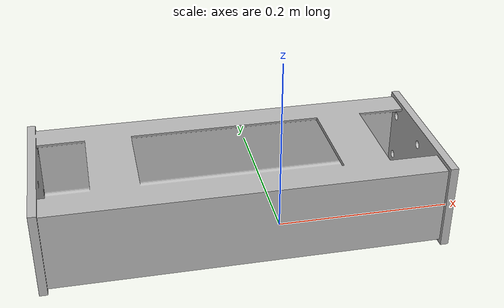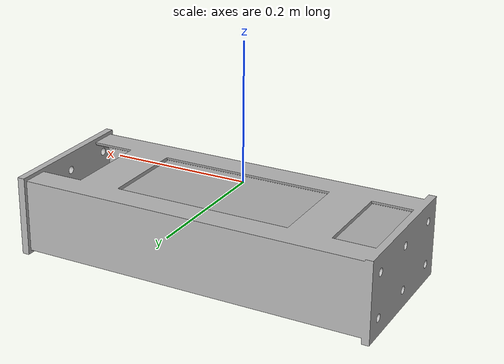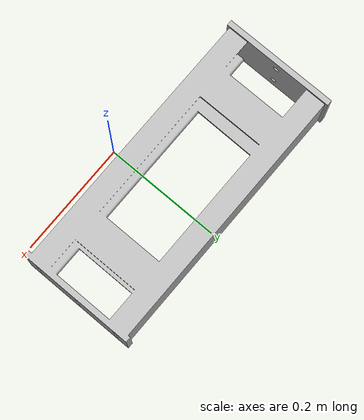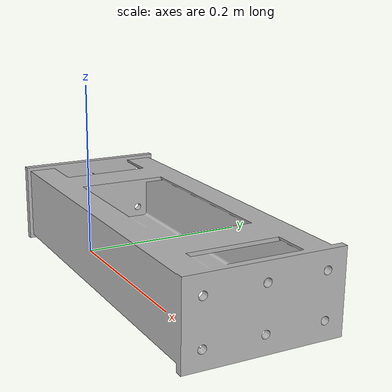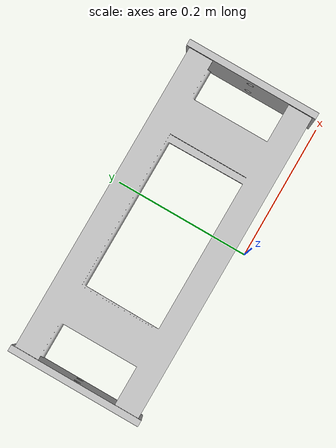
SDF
<?xml version='1.0'?>
<sdf version='1.4'>
  <model name="FGAG1002_NEXO">
 <static>false</static>
 <link name="mesh_link">
	<inertial>
            <mass>100.0</mass>
 	</inertial>
        <visual name="visual">
        <geometry>
            <mesh><uri>model://FGAG1002_NEXO/meshes/FGAG1002_NEXO.stl</uri></mesh>
          </geometry>
        </visual>
        <collision name="collision">
          <geometry>
            <mesh><uri>model://FGAG1002_NEXO/meshes/FGAG1002_NEXO.stl</uri></mesh>
          </geometry>
        </collision>
      </link>
  </model>
</sdf>
